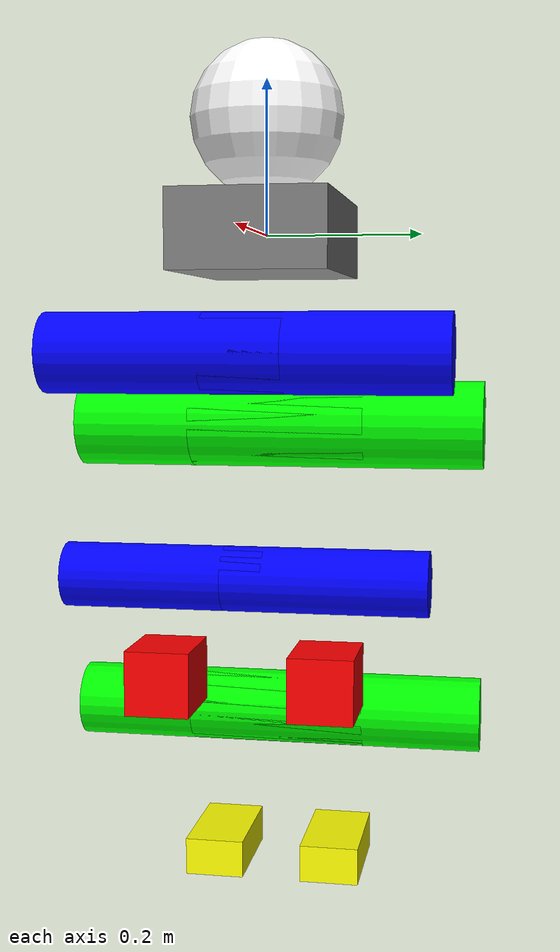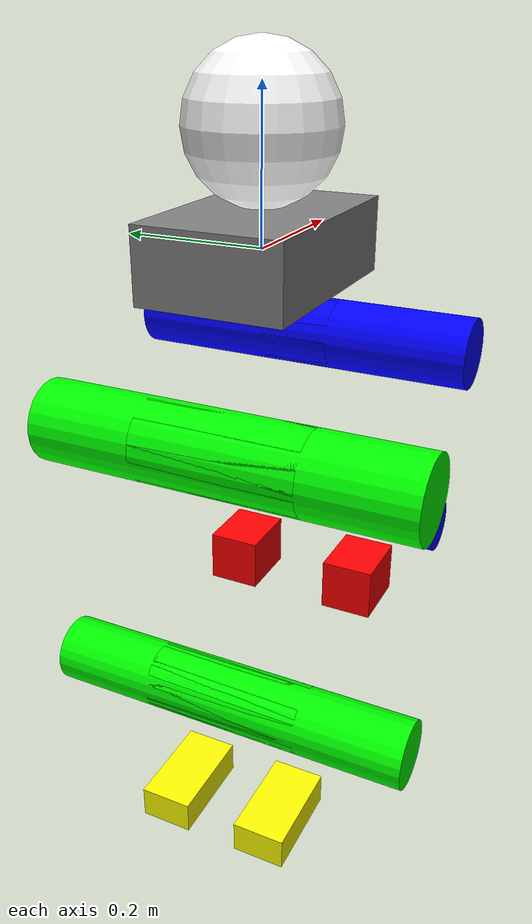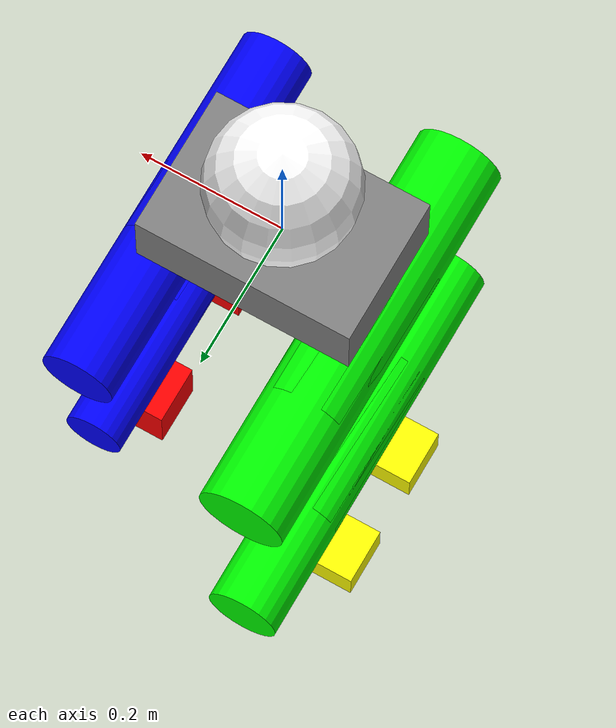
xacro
<?xml version="1.0"?>
<robot xmlns:xacro="http://www.ros.org/wiki/xacro" name="humanoid_robot">

  <!-- Constants for robot dimensions -->
  <xacro:property name="pi" value="3.1415926535897931" />

  <!-- Base link -->
  <link name="base_link">
    <visual>
      <geometry>
        <box size="0.3 0.2 0.1"/>
      </geometry>
      <material name="grey">
        <color rgba="0.5 0.5 0.5 1.0"/>
      </material>
    </visual>
    <collision>
      <geometry>
        <box size="0.3 0.2 0.1"/>
      </geometry>
    </collision>
    <inertial>
      <mass value="5.0"/>
      <inertia ixx="0.1" ixy="0.0" ixz="0.0" iyy="0.1" iyz="0.0" izz="0.1"/>
    </inertial>
  </link>

  <!-- Head -->
  <joint name="head_joint" type="revolute">
    <parent link="base_link"/>
    <child link="head_link"/>
    <origin xyz="0 0 0.15" rpy="0 0 0"/>
    <axis xyz="0 1 0"/>
    <limit lower="${-pi/2}" upper="${pi/2}" effort="10.0" velocity="2.0"/>
  </joint>

  <link name="head_link">
    <visual>
      <geometry>
        <sphere radius="0.1"/>
      </geometry>
      <material name="white">
        <color rgba="1.0 1.0 1.0 1.0"/>
      </material>
    </visual>
    <collision>
      <geometry>
        <sphere radius="0.1"/>
      </geometry>
    </collision>
    <inertial>
      <mass value="1.0"/>
      <inertia ixx="0.004" ixy="0.0" ixz="0.0" iyy="0.004" iyz="0.0" izz="0.004"/>
    </inertial>
  </link>

  <!-- Left Arm -->
  <joint name="left_shoulder_joint" type="revolute">
    <parent link="base_link"/>
    <child link="left_upper_arm_link"/>
    <origin xyz="0.15 0.1 0.0" rpy="0 0 0"/>
    <axis xyz="0 1 0"/>
    <limit lower="${-pi/2}" upper="${pi/2}" effort="10.0" velocity="2.0"/>
  </joint>

  <link name="left_upper_arm_link">
    <visual>
      <geometry>
        <cylinder length="0.3" radius="0.05"/>
      </geometry>
      <origin xyz="0 0 -0.15" rpy="${pi/2} 0 0"/>
      <material name="blue">
        <color rgba="0.0 0.0 1.0 1.0"/>
      </material>
    </visual>
    <collision>
      <geometry>
        <cylinder length="0.3" radius="0.05"/>
      </geometry>
      <origin xyz="0 0 -0.15" rpy="${pi/2} 0 0"/>
    </collision>
    <inertial>
      <mass value="0.5"/>
      <inertia ixx="0.005" ixy="0.0" ixz="0.0" iyy="0.005" iyz="0.0" izz="0.0005"/>
    </inertial>
  </link>

  <joint name="left_elbow_joint" type="revolute">
    <parent link="left_upper_arm_link"/>
    <child link="left_lower_arm_link"/>
    <origin xyz="0 0 -0.3" rpy="0 0 0"/>
    <axis xyz="0 1 0"/>
    <limit lower="${-pi/2}" upper="${pi/2}" effort="10.0" velocity="2.0"/>
  </joint>

  <link name="left_lower_arm_link">
    <visual>
      <geometry>
        <cylinder length="0.25" radius="0.04"/>
      </geometry>
      <origin xyz="0 0 -0.125" rpy="${pi/2} 0 0"/>
      <material name="blue">
        <color rgba="0.0 0.0 1.0 1.0"/>
      </material>
    </visual>
    <collision>
      <geometry>
        <cylinder length="0.25" radius="0.04"/>
      </geometry>
      <origin xyz="0 0 -0.125" rpy="${pi/2} 0 0"/>
    </collision>
    <inertial>
      <mass value="0.3"/>
      <inertia ixx="0.002" ixy="0.0" ixz="0.0" iyy="0.002" iyz="0.0" izz="0.0003"/>
    </inertial>
  </link>

  <joint name="left_wrist_joint" type="revolute">
    <parent link="left_lower_arm_link"/>
    <child link="left_hand_link"/>
    <origin xyz="0 0 -0.25" rpy="0 0 0"/>
    <axis xyz="1 0 0"/>
    <limit lower="${-pi/2}" upper="${pi/2}" effort="5.0" velocity="2.0"/>
  </joint>

  <link name="left_hand_link">
    <visual>
      <geometry>
        <box size="0.1 0.08 0.08"/>
      </geometry>
      <material name="red">
        <color rgba="1.0 0.0 0.0 1.0"/>
      </material>
    </visual>
    <collision>
      <geometry>
        <box size="0.1 0.08 0.08"/>
      </geometry>
    </collision>
    <inertial>
      <mass value="0.2"/>
      <inertia ixx="0.0005" ixy="0.0" ixz="0.0" iyy="0.0005" iyz="0.0" izz="0.0005"/>
    </inertial>
  </link>

  <!-- Right Arm -->
  <joint name="right_shoulder_joint" type="revolute">
    <parent link="base_link"/>
    <child link="right_upper_arm_link"/>
    <origin xyz="0.15 -0.1 0.0" rpy="0 0 0"/>
    <axis xyz="0 1 0"/>
    <limit lower="${-pi/2}" upper="${pi/2}" effort="10.0" velocity="2.0"/>
  </joint>

  <link name="right_upper_arm_link">
    <visual>
      <geometry>
        <cylinder length="0.3" radius="0.05"/>
      </geometry>
      <origin xyz="0 0 -0.15" rpy="${pi/2} 0 0"/>
      <material name="blue">
        <color rgba="0.0 0.0 1.0 1.0"/>
      </material>
    </visual>
    <collision>
      <geometry>
        <cylinder length="0.3" radius="0.05"/>
      </geometry>
      <origin xyz="0 0 -0.15" rpy="${pi/2} 0 0"/>
    </collision>
    <inertial>
      <mass value="0.5"/>
      <inertia ixx="0.005" ixy="0.0" ixz="0.0" iyy="0.005" iyz="0.0" izz="0.0005"/>
    </inertial>
  </link>

  <joint name="right_elbow_joint" type="revolute">
    <parent link="right_upper_arm_link"/>
    <child link="right_lower_arm_link"/>
    <origin xyz="0 0 -0.3" rpy="0 0 0"/>
    <axis xyz="0 1 0"/>
    <limit lower="${-pi/2}" upper="${pi/2}" effort="10.0" velocity="2.0"/>
  </joint>

  <link name="right_lower_arm_link">
    <visual>
      <geometry>
        <cylinder length="0.25" radius="0.04"/>
      </geometry>
      <origin xyz="0 0 -0.125" rpy="${pi/2} 0 0"/>
      <material name="blue">
        <color rgba="0.0 0.0 1.0 1.0"/>
      </material>
    </visual>
    <collision>
      <geometry>
        <cylinder length="0.25" radius="0.04"/>
      </geometry>
      <origin xyz="0 0 -0.125" rpy="${pi/2} 0 0"/>
    </collision>
    <inertial>
      <mass value="0.3"/>
      <inertia ixx="0.002" ixy="0.0" ixz="0.0" iyy="0.002" iyz="0.0" izz="0.0003"/>
    </inertial>
  </link>

  <joint name="right_wrist_joint" type="revolute">
    <parent link="right_lower_arm_link"/>
    <child link="right_hand_link"/>
    <origin xyz="0 0 -0.25" rpy="0 0 0"/>
    <axis xyz="1 0 0"/>
    <limit lower="${-pi/2}" upper="${pi/2}" effort="5.0" velocity="2.0"/>
  </joint>

  <link name="right_hand_link">
    <visual>
      <geometry>
        <box size="0.1 0.08 0.08"/>
      </geometry>
      <material name="red">
        <color rgba="1.0 0.0 0.0 1.0"/>
      </material>
    </visual>
    <collision>
      <geometry>
        <box size="0.1 0.08 0.08"/>
      </geometry>
    </collision>
    <inertial>
      <mass value="0.2"/>
      <inertia ixx="0.0005" ixy="0.0" ixz="0.0" iyy="0.0005" iyz="0.0" izz="0.0005"/>
    </inertial>
  </link>

  <!-- Left Leg -->
  <joint name="left_hip_joint" type="revolute">
    <parent link="base_link"/>
    <child link="left_upper_leg_link"/>
    <origin xyz="-0.1 0.08 -0.05" rpy="0 0 0"/>
    <axis xyz="1 0 0"/>
    <limit lower="${-pi/2}" upper="${pi/2}" effort="20.0" velocity="2.0"/>
  </joint>

  <link name="left_upper_leg_link">
    <visual>
      <geometry>
        <cylinder length="0.4" radius="0.06"/>
      </geometry>
      <origin xyz="0 0 -0.2" rpy="${pi/2} 0 0"/>
      <material name="green">
        <color rgba="0.0 1.0 0.0 1.0"/>
      </material>
    </visual>
    <collision>
      <geometry>
        <cylinder length="0.4" radius="0.06"/>
      </geometry>
      <origin xyz="0 0 -0.2" rpy="${pi/2} 0 0"/>
    </collision>
    <inertial>
      <mass value="1.0"/>
      <inertia ixx="0.015" ixy="0.0" ixz="0.0" iyy="0.015" iyz="0.0" izz="0.001"/>
    </inertial>
  </link>

  <joint name="left_knee_joint" type="revolute">
    <parent link="left_upper_leg_link"/>
    <child link="left_lower_leg_link"/>
    <origin xyz="0 0 -0.4" rpy="0 0 0"/>
    <axis xyz="1 0 0"/>
    <limit lower="0" upper="${pi/2}" effort="20.0" velocity="2.0"/>
  </joint>

  <link name="left_lower_leg_link">
    <visual>
      <geometry>
        <cylinder length="0.4" radius="0.05"/>
      </geometry>
      <origin xyz="0 0 -0.2" rpy="${pi/2} 0 0"/>
      <material name="green">
        <color rgba="0.0 1.0 0.0 1.0"/>
      </material>
    </visual>
    <collision>
      <geometry>
        <cylinder length="0.4" radius="0.05"/>
      </geometry>
      <origin xyz="0 0 -0.2" rpy="${pi/2} 0 0"/>
    </collision>
    <inertial>
      <mass value="0.8"/>
      <inertia ixx="0.01" ixy="0.0" ixz="0.0" iyy="0.01" iyz="0.0" izz="0.001"/>
    </inertial>
  </link>

  <joint name="left_ankle_joint" type="revolute">
    <parent link="left_lower_leg_link"/>
    <child link="left_foot_link"/>
    <origin xyz="0 0 -0.4" rpy="0 0 0"/>
    <axis xyz="0 1 0"/>
    <limit lower="${-pi/4}" upper="${pi/4}" effort="10.0" velocity="2.0"/>
  </joint>

  <link name="left_foot_link">
    <visual>
      <geometry>
        <box size="0.15 0.08 0.05"/>
      </geometry>
      <material name="yellow">
        <color rgba="1.0 1.0 0.0 1.0"/>
      </material>
    </visual>
    <collision>
      <geometry>
        <box size="0.15 0.08 0.05"/>
      </geometry>
    </collision>
    <inertial>
      <mass value="0.3"/>
      <inertia ixx="0.0005" ixy="0.0" ixz="0.0" iyy="0.0005" iyz="0.0" izz="0.0005"/>
    </inertial>
  </link>

  <!-- Right Leg -->
  <joint name="right_hip_joint" type="revolute">
    <parent link="base_link"/>
    <child link="right_upper_leg_link"/>
    <origin xyz="-0.1 -0.08 -0.05" rpy="0 0 0"/>
    <axis xyz="1 0 0"/>
    <limit lower="${-pi/2}" upper="${pi/2}" effort="20.0" velocity="2.0"/>
  </joint>

  <link name="right_upper_leg_link">
    <visual>
      <geometry>
        <cylinder length="0.4" radius="0.06"/>
      </geometry>
      <origin xyz="0 0 -0.2" rpy="${pi/2} 0 0"/>
      <material name="green">
        <color rgba="0.0 1.0 0.0 1.0"/>
      </material>
    </visual>
    <collision>
      <geometry>
        <cylinder length="0.4" radius="0.06"/>
      </geometry>
      <origin xyz="0 0 -0.2" rpy="${pi/2} 0 0"/>
    </collision>
    <inertial>
      <mass value="1.0"/>
      <inertia ixx="0.015" ixy="0.0" ixz="0.0" iyy="0.015" iyz="0.0" izz="0.001"/>
    </inertial>
  </link>

  <joint name="right_knee_joint" type="revolute">
    <parent link="right_upper_leg_link"/>
    <child link="right_lower_leg_link"/>
    <origin xyz="0 0 -0.4" rpy="0 0 0"/>
    <axis xyz="1 0 0"/>
    <limit lower="0" upper="${pi/2}" effort="20.0" velocity="2.0"/>
  </joint>

  <link name="right_lower_leg_link">
    <visual>
      <geometry>
        <cylinder length="0.4" radius="0.05"/>
      </geometry>
      <origin xyz="0 0 -0.2" rpy="${pi/2} 0 0"/>
      <material name="green">
        <color rgba="0.0 1.0 0.0 1.0"/>
      </material>
    </visual>
    <collision>
      <geometry>
        <cylinder length="0.4" radius="0.05"/>
      </geometry>
      <origin xyz="0 0 -0.2" rpy="${pi/2} 0 0"/>
    </collision>
    <inertial>
      <mass value="0.8"/>
      <inertia ixx="0.01" ixy="0.0" ixz="0.0" iyy="0.01" iyz="0.0" izz="0.001"/>
    </inertial>
  </link>

  <joint name="right_ankle_joint" type="revolute">
    <parent link="right_lower_leg_link"/>
    <child link="right_foot_link"/>
    <origin xyz="0 0 -0.4" rpy="0 0 0"/>
    <axis xyz="0 1 0"/>
    <limit lower="${-pi/4}" upper="${pi/4}" effort="10.0" velocity="2.0"/>
  </joint>

  <link name="right_foot_link">
    <visual>
      <geometry>
        <box size="0.15 0.08 0.05"/>
      </geometry>
      <material name="yellow">
        <color rgba="1.0 1.0 0.0 1.0"/>
      </material>
    </visual>
    <collision>
      <geometry>
        <box size="0.15 0.08 0.05"/>
      </geometry>
    </collision>
    <inertial>
      <mass value="0.3"/>
      <inertia ixx="0.0005" ixy="0.0" ixz="0.0" iyy="0.0005" iyz="0.0" izz="0.0005"/>
    </inertial>
  </link>

  <!-- IMU sensor -->
  <gazebo reference="base_link">
    <sensor name="imu_sensor" type="imu">
      <always_on>true</always_on>
      <update_rate>50</update_rate>
      <visualize>true</visualize>
    </sensor>
  </gazebo>

  <!-- Transmission elements for ros2_control -->
  <transmission name="left_hip_trans" type="transmission_interface/SimpleTransmission">
    <joint name="left_hip_joint">
      <hardwareInterface>hardware_interface/PositionJointInterface</hardwareInterface>
    </joint>
    <actuator name="left_hip_motor">
      <hardwareInterface>hardware_interface/PositionJointInterface</hardwareInterface>
      <mechanicalReduction>1</mechanicalReduction>
    </actuator>
  </transmission>

  <transmission name="left_knee_trans" type="transmission_interface/SimpleTransmission">
    <joint name="left_knee_joint">
      <hardwareInterface>hardware_interface/PositionJointInterface</hardwareInterface>
    </joint>
    <actuator name="left_knee_motor">
      <hardwareInterface>hardware_interface/PositionJointInterface</hardwareInterface>
      <mechanicalReduction>1</mechanicalReduction>
    </actuator>
  </transmission>

  <transmission name="left_ankle_trans" type="transmission_interface/SimpleTransmission">
    <joint name="left_ankle_joint">
      <hardwareInterface>hardware_interface/PositionJointInterface</hardwareInterface>
    </joint>
    <actuator name="left_ankle_motor">
      <hardwareInterface>hardware_interface/PositionJointInterface</hardwareInterface>
      <mechanicalReduction>1</mechanicalReduction>
    </actuator>
  </transmission>

  <transmission name="right_hip_trans" type="transmission_interface/SimpleTransmission">
    <joint name="right_hip_joint">
      <hardwareInterface>hardware_interface/PositionJointInterface</hardwareInterface>
    </joint>
    <actuator name="right_hip_motor">
      <hardwareInterface>hardware_interface/PositionJointInterface</hardwareInterface>
      <mechanicalReduction>1</mechanicalReduction>
    </actuator>
  </transmission>

  <transmission name="right_knee_trans" type="transmission_interface/SimpleTransmission">
    <joint name="right_knee_joint">
      <hardwareInterface>hardware_interface/PositionJointInterface</hardwareInterface>
    </joint>
    <actuator name="right_knee_motor">
      <hardwareInterface>hardware_interface/PositionJointInterface</hardwareInterface>
      <mechanicalReduction>1</mechanicalReduction>
    </actuator>
  </transmission>

  <transmission name="right_ankle_trans" type="transmission_interface/SimpleTransmission">
    <joint name="right_ankle_joint">
      <hardwareInterface>hardware_interface/PositionJointInterface</hardwareInterface>
    </joint>
    <actuator name="right_ankle_motor">
      <hardwareInterface>hardware_interface/PositionJointInterface</hardwareInterface>
      <mechanicalReduction>1</mechanicalReduction>
    </actuator>
  </transmission>

  <transmission name="left_shoulder_trans" type="transmission_interface/SimpleTransmission">
    <joint name="left_shoulder_joint">
      <hardwareInterface>hardware_interface/PositionJointInterface</hardwareInterface>
    </joint>
    <actuator name="left_shoulder_motor">
      <hardwareInterface>hardware_interface/PositionJointInterface</hardwareInterface>
      <mechanicalReduction>1</mechanicalReduction>
    </actuator>
  </transmission>

  <transmission name="left_elbow_trans" type="transmission_interface/SimpleTransmission">
    <joint name="left_elbow_joint">
      <hardwareInterface>hardware_interface/PositionJointInterface</hardwareInterface>
    </joint>
    <actuator name="left_elbow_motor">
      <hardwareInterface>hardware_interface/PositionJointInterface</hardwareInterface>
      <mechanicalReduction>1</mechanicalReduction>
    </actuator>
  </transmission>

  <transmission name="left_wrist_trans" type="transmission_interface/SimpleTransmission">
    <joint name="left_wrist_joint">
      <hardwareInterface>hardware_interface/PositionJointInterface</hardwareInterface>
    </joint>
    <actuator name="left_wrist_motor">
      <hardwareInterface>hardware_interface/PositionJointInterface</hardwareInterface>
      <mechanicalReduction>1</mechanicalReduction>
    </actuator>
  </transmission>

  <transmission name="right_shoulder_trans" type="transmission_interface/SimpleTransmission">
    <joint name="right_shoulder_joint">
      <hardwareInterface>hardware_interface/PositionJointInterface</hardwareInterface>
    </joint>
    <actuator name="right_shoulder_motor">
      <hardwareInterface>hardware_interface/PositionJointInterface</hardwareInterface>
      <mechanicalReduction>1</mechanicalReduction>
    </actuator>
  </transmission>

  <transmission name="right_elbow_trans" type="transmission_interface/SimpleTransmission">
    <joint name="right_elbow_joint">
      <hardwareInterface>hardware_interface/PositionJointInterface</hardwareInterface>
    </joint>
    <actuator name="right_elbow_motor">
      <hardwareInterface>hardware_interface/PositionJointInterface</hardwareInterface>
      <mechanicalReduction>1</mechanicalReduction>
    </actuator>
  </transmission>

  <transmission name="right_wrist_trans" type="transmission_interface/SimpleTransmission">
    <joint name="right_wrist_joint">
      <hardwareInterface>hardware_interface/PositionJointInterface</hardwareInterface>
    </joint>
    <actuator name="right_wrist_motor">
      <hardwareInterface>hardware_interface/PositionJointInterface</hardwareInterface>
      <mechanicalReduction>1</mechanicalReduction>
    </actuator>
  </transmission>

  <transmission name="head_trans" type="transmission_interface/SimpleTransmission">
    <joint name="head_joint">
      <hardwareInterface>hardware_interface/PositionJointInterface</hardwareInterface>
    </joint>
    <actuator name="head_motor">
      <hardwareInterface>hardware_interface/PositionJointInterface</hardwareInterface>
      <mechanicalReduction>1</mechanicalReduction>
    </actuator>
  </transmission>

</robot>
